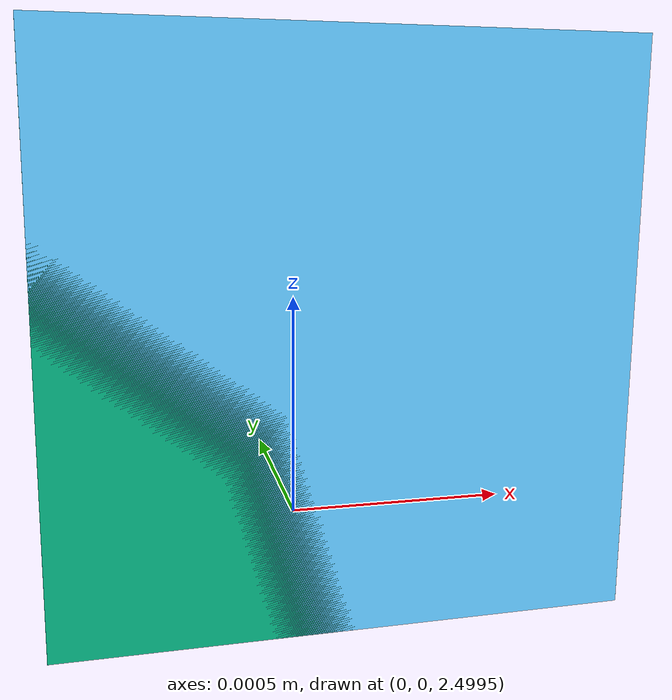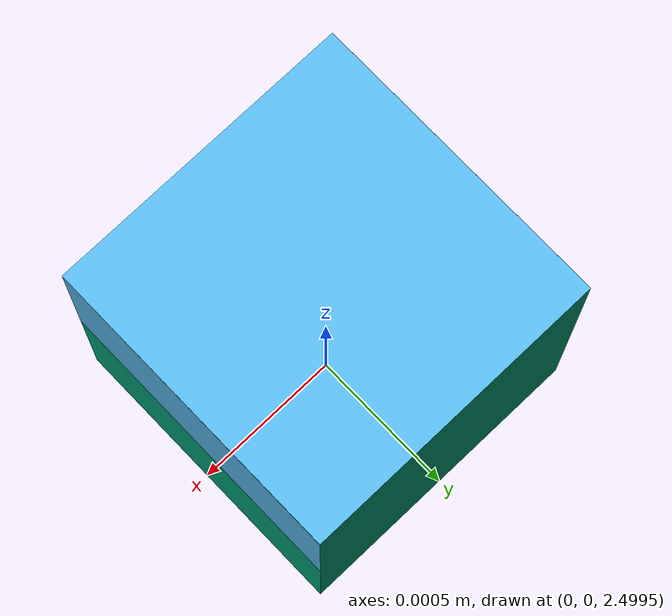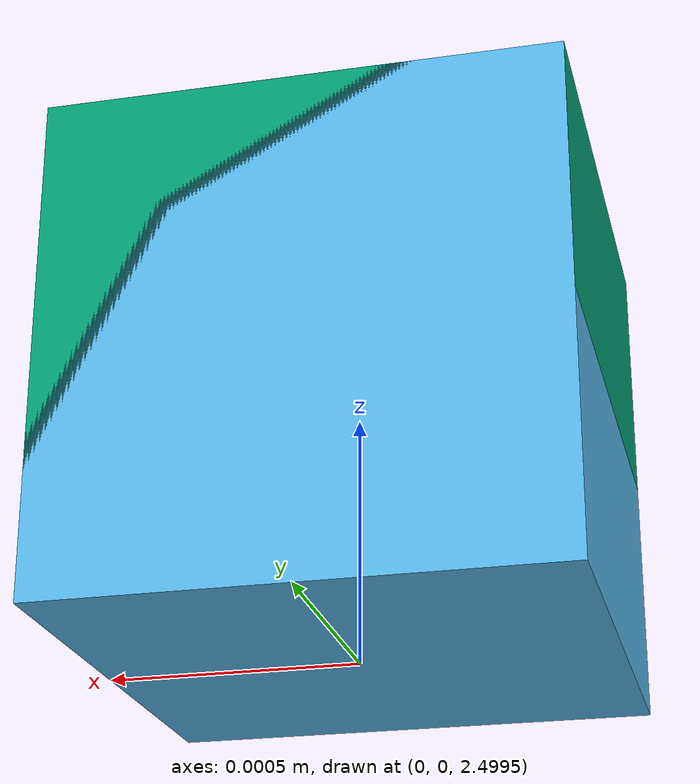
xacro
<?xml version="1.0"?>
<robot name="cam_bot" xmlns:xacro="http://ros.org/wiki/xacro">

<link name="world" />

<link name="camera_link_twisted">
<inertial>
        <mass value="1.584994"/>
        <origin xyz="0.0 0.0 0.0"/>
        <inertia
          ixx="0.01042" ixy="0.001177" ixz="-0.0008871"
          iyy="0.01045" iyz="0.0002226"
          izz="0.01817"/>
      </inertial>
    <visual>
        <geometry>
        <box size="0.001 0.001 0.001" />
        </geometry>
      </visual>
      <collision>
        <geometry>
        <box size="0.001 0.001 0.001" />
        </geometry>
      </collision>
</link>

<joint name="world_base" type="fixed">
    <parent link="world" />
    <child link="camera_link_twisted"/>
    <origin xyz="0 0.0 2.5" rpy="0 1.571 3.1421" />
</joint>

<link name="camera_link">
<inertial>
        <mass value="1.584994"/>
        <origin xyz="0.0 0.0 0.0"/>
        <inertia
          ixx="0.01042" ixy="0.001177" ixz="-0.0008871"
          iyy="0.01045" iyz="0.0002226"
          izz="0.01817"/>
      </inertial>
    <visual>
        <geometry>
        <box size="0.001 0.001 0.001" />
        </geometry>
      </visual>
      <collision>
        <geometry>
        <box size="0.001 0.001 0.001" />
        </geometry>
      </collision>
</link>

<joint name="camera_base" type="fixed">
    <parent link="camera_link_twisted" />
    <child link="camera_link"/>
    <origin xyz="0 0.0 0" rpy="0 1.571 0" />
</joint>

<gazebo reference="camera_link_twisted">
    <sensor type="camera" name="camera">
      <update_rate>10</update_rate>
      <camera name="head">
        <horizontal_fov>1.3962634</horizontal_fov>
        <image>
          <width>1280</width>
          <height>720</height>
          <format>R8G8B8</format>
        </image>
        <clip>
          <near>0.02</near>
          <far>4</far>
        </clip>
        <noise>
          <type>gaussian</type>
          <!-- Noise is sampled independently per pixel on each frame.
               That pixel's noise value is added to each of its color
               channels, which at that point lie in the range [0,1]. -->
          <mean>0.0</mean>
          <stddev>0.007</stddev>
        </noise>
      </camera>
      <plugin name="camera_controller" filename="libgazebo_ros_camera.so">
        <alwaysOn>true</alwaysOn>
        <updateRate>10.0</updateRate>
        <cameraName>usb_cam</cameraName>
        <imageTopicName>image_raw</imageTopicName>
        <cameraInfoTopicName>/camera/camera_info</cameraInfoTopicName>
        <frameName>camera_link_twisted</frameName>
        <hackBaseline>0.07</hackBaseline>
        <distortionK1>0.0</distortionK1>
        <distortionK2>0.0</distortionK2>
        <distortionK3>0.0</distortionK3>
        <distortionT1>0.0</distortionT1>
        <distortionT2>0.0</distortionT2>
      </plugin>
    </sensor>
  </gazebo>

</robot>
